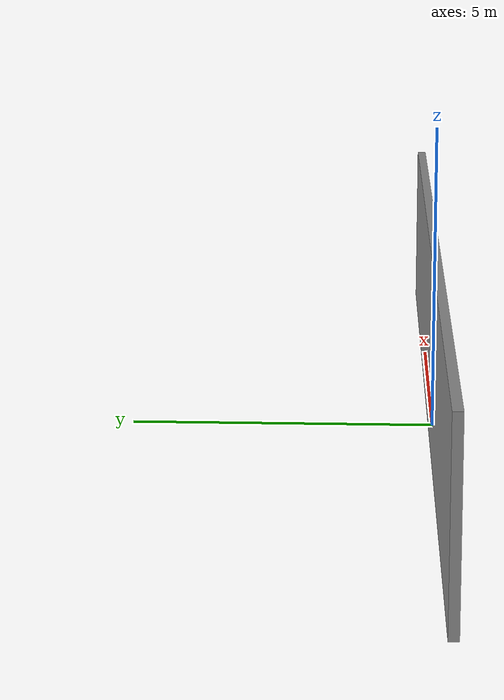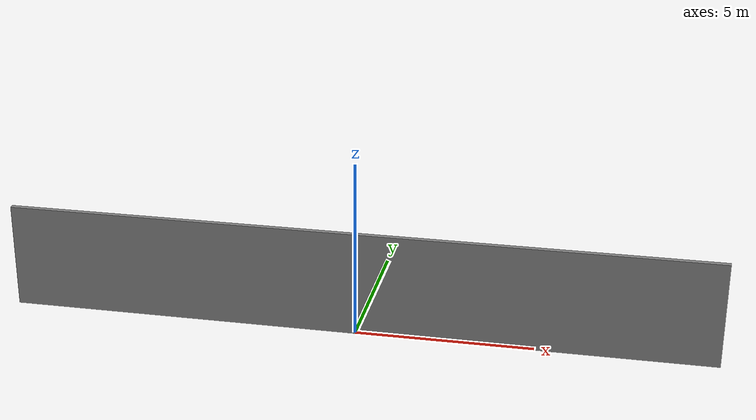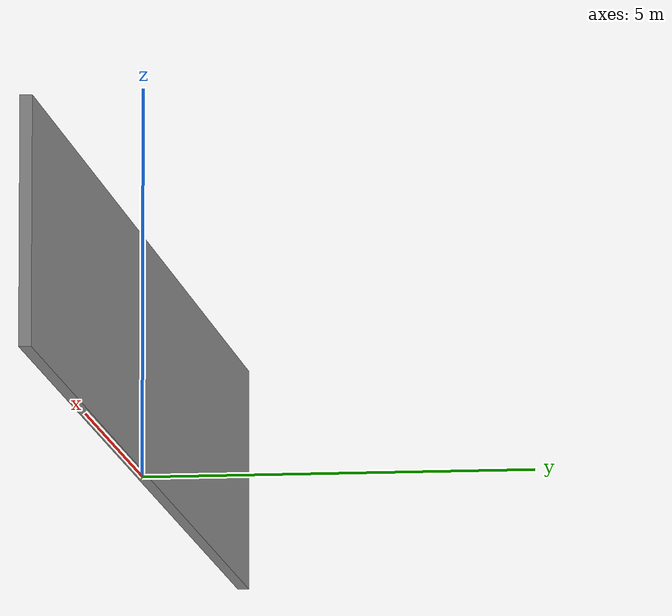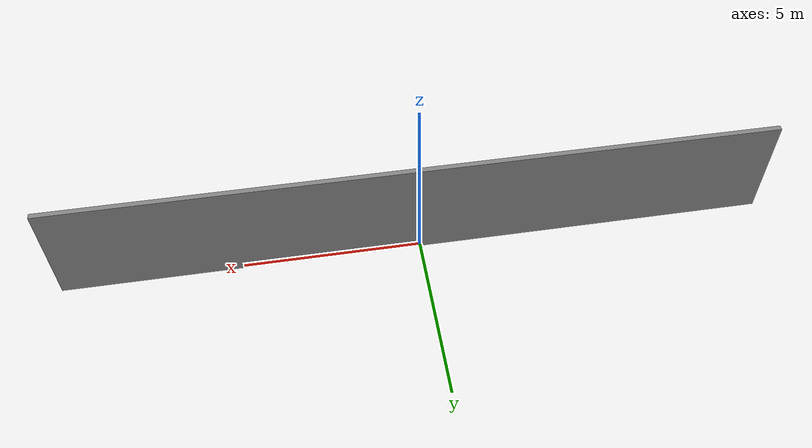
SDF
<?xml version="1.0"?>
<sdf version="1.11">
  <model name="wall_20x0.15x3">
    <static>true</static>
    <link name="body">
      <inertial>
        <mass>1.0</mass>
        <inertia>
          <ixx>1.0</ixx>
          <iyy>1.0</iyy>
          <izz>1.0</izz>
          <ixy>0.0</ixy>
          <ixz>0.0</ixz>
          <iyz>0.0</iyz>
        </inertia>
      </inertial>
      <collision name="collision">
        <density>10.0</density>
        <geometry>
          <mesh optimization="convex_decomposition">
            <uri>models://wall_20x0.15x3/mesh.stl</uri>
          </mesh>
        </geometry>
      </collision>
      <visual name="visual">
        <geometry>
          <mesh>
            <uri>models://wall_20x0.15x3/mesh.stl</uri>
          </mesh>
        </geometry>
          <material>
            <ambient>0.45 0.45 0.45 1</ambient>
            <diffuse>0.55 0.55 0.55 1</diffuse>
            <specular>0.15 0.15 0.15 1</specular>
          </material>
      </visual>
    </link>
  </model>
</sdf>
